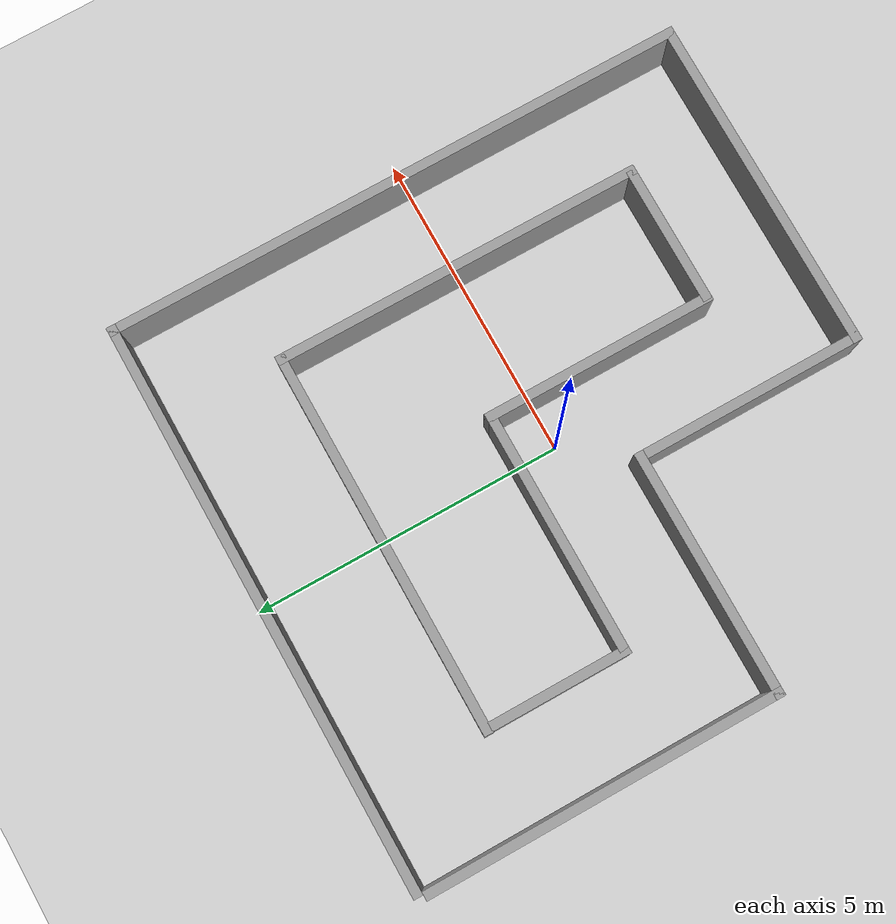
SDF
<?xml version='1.0'?>
<sdf version='1.5'>
<world name='default'>
  <light name='sun' type='directional'>
      <cast_shadows>1</cast_shadows>
      <pose>0 0 10 0 -0 0</pose>
      <diffuse>0.8 0.8 0.8 1</diffuse>
      <specular>0.2 0.2 0.2 1</specular>
      <attenuation>
        <range>1000</range>
        <constant>0.9</constant>
        <linear>0.01</linear>
        <quadratic>0.001</quadratic>
      </attenuation>
      <direction>0.5 0.1 -0.9</direction>
    </light>

  <model name='ground_plane'>
      <static>1</static>
      <link name='link'>
        <collision name='collision'>
          <geometry>
            <plane>
              <normal>0 0 1</normal>
              <size>100 100</size>
            </plane>
          </geometry>
          <surface>
            <friction>
              <ode>
                <mu>100</mu>
                <mu2>50</mu2>
              </ode>
            </friction>
            <bounce/>
            <contact>
              <ode/>
            </contact>
          </surface>
          <max_contacts>10</max_contacts>
        </collision>
        <visual name='visual'>
          <cast_shadows>0</cast_shadows>
          <geometry>
            <plane>
              <normal>0 0 1</normal>
              <size>100 100</size>
            </plane>
          </geometry>
          <material>
            <script>
              <uri>file://media/materials/scripts/gazebo.material</uri>
              <name>Gazebo/Grey</name>
            </script>
          </material>
        </visual>
        <velocity_decay>
          <linear>0</linear>
          <angular>0</angular>
        </velocity_decay>
        <self_collide>0</self_collide>
        <kinematic>0</kinematic>
        <gravity>1</gravity>
      </link>
  </model>

  <model name='Circuit_ql_2'>
    <pose frame=''>-0.076 0.178 0 0 -0 0</pose>
    <link name='Wall_0'>
      <collision name='Wall_0_Collision'>
        <geometry>
          <box>
            <size>5.75 0.15 1</size>
          </box>
        </geometry>
        <pose frame=''>0 0 0.5 0 -0 0</pose>
      </collision>
      <visual name='Wall_0_Visual'>
        <pose frame=''>0 0 0.5 0 -0 0</pose>
        <geometry>
          <box>
            <size>5.75 0.15 1</size>
          </box>
        </geometry>
        <material>
          <script>
            <uri>file://media/materials/scripts/gazebo.material</uri>
            <name>Gazebo/Grey</name>
          </script>
          <ambient>1 1 1 1</ambient>
        </material>
      </visual>
      <pose frame=''>-4.6 1.725 0 0 0 -1.5708</pose>
    </link>
    <link name='Wall_1'>
      <collision name='Wall_1_Collision'>
        <geometry>
          <box>
            <size>4 0.15 1</size>
          </box>
        </geometry>
        <pose frame=''>0 0 0.5 0 -0 0</pose>
      </collision>
      <visual name='Wall_1_Visual'>
        <pose frame=''>0 0 0.5 0 -0 0</pose>
        <geometry>
          <box>
            <size>4 0.15 1</size>
          </box>
        </geometry>
        <material>
          <script>
            <uri>file://media/materials/scripts/gazebo.material</uri>
            <name>Gazebo/Grey</name>
          </script>
          <ambient>1 1 1 1</ambient>
        </material>
      </visual>
      <pose frame=''>-2.675 -1.075 0 0 -0 0</pose>
    </link>
    <link name='Wall_11'>
      <collision name='Wall_11_Collision'>
        <geometry>
          <box>
            <size>2.25 0.15 1</size>
          </box>
        </geometry>
        <pose frame=''>0 0 0.5 0 -0 0</pose>
      </collision>
      <visual name='Wall_11_Visual'>
        <pose frame=''>0 0 0.5 0 -0 0</pose>
        <geometry>
          <box>
            <size>2.25 0.15 1</size>
          </box>
        </geometry>
        <material>
          <script>
            <uri>file://media/materials/scripts/gazebo.material</uri>
            <name>Gazebo/Grey</name>
          </script>
          <ambient>1 1 1 1</ambient>
        </material>
      </visual>
      <pose frame=''>-3.036 1.559 0 0 0 -1.5708</pose>
    </link>
    <link name='Wall_12'>
      <collision name='Wall_12_Collision'>
        <geometry>
          <box>
            <size>4 0.15 1</size>
          </box>
        </geometry>
        <pose frame=''>0 0 0.5 0 -0 0</pose>
      </collision>
      <visual name='Wall_12_Visual'>
        <pose frame=''>0 0 0.5 0 -0 0</pose>
        <geometry>
          <box>
            <size>4 0.15 1</size>
          </box>
        </geometry>
        <material>
          <script>
            <uri>file://media/materials/scripts/gazebo.material</uri>
            <name>Gazebo/Grey</name>
          </script>
          <ambient>1 1 1 1</ambient>
        </material>
      </visual>
      <pose frame=''>-1.111 0.509 0 0 -0 0</pose>
    </link>
    <link name='Wall_13'>
      <collision name='Wall_13_Collision'>
        <geometry>
          <box>
            <size>3.75 0.15 1</size>
          </box>
        </geometry>
        <pose frame=''>0 0 0.5 0 -0 0</pose>
      </collision>
      <visual name='Wall_13_Visual'>
        <pose frame=''>0 0 0.5 0 -0 0</pose>
        <geometry>
          <box>
            <size>3.75 0.15 1</size>
          </box>
        </geometry>
        <material>
          <script>
            <uri>file://media/materials/scripts/gazebo.material</uri>
            <name>Gazebo/Grey</name>
          </script>
          <ambient>1 1 1 1</ambient>
        </material>
      </visual>
      <pose frame=''>0.814 -1.291 0 0 0 -1.5708</pose>
    </link>
    <link name='Wall_14'>
      <collision name='Wall_14_Collision'>
        <geometry>
          <box>
            <size>2.25 0.15 1</size>
          </box>
        </geometry>
        <pose frame=''>0 0 0.5 0 -0 0</pose>
      </collision>
      <visual name='Wall_14_Visual'>
        <pose frame=''>0 0 0.5 0 -0 0</pose>
        <geometry>
          <box>
            <size>2.25 0.15 1</size>
          </box>
        </geometry>
        <material>
          <script>
            <uri>file://media/materials/scripts/gazebo.material</uri>
            <name>Gazebo/Grey</name>
          </script>
          <ambient>1 1 1 1</ambient>
        </material>
      </visual>
      <pose frame=''>1.9 -3.091 0 0 -0 0</pose>
    </link>
    <link name='Wall_15'>
      <collision name='Wall_15_Collision'>
        <geometry>
          <box>
            <size>5.98502 0.15 1</size>
          </box>
        </geometry>
        <pose frame=''>0 0 0.5 0 -0 0</pose>
      </collision>
      <visual name='Wall_15_Visual'>
        <pose frame=''>0 0 0.5 0 -0 0</pose>
        <geometry>
          <box>
            <size>5.98502 0.15 1</size>
          </box>
        </geometry>
        <material>
          <script>
            <uri>file://media/materials/scripts/gazebo.material</uri>
            <name>Gazebo/Grey</name>
          </script>
          <ambient>1 1 1 1</ambient>
        </material>
      </visual>
      <pose frame=''>3.0215 -0.1735 0 0 -0 1.56823</pose>
    </link>
    <link name='Wall_16'>
      <collision name='Wall_16_Collision'>
        <geometry>
          <box>
            <size>6.2 0.15 1</size>
          </box>
        </geometry>
        <pose frame=''>0 0 0.5 0 -0 0</pose>
      </collision>
      <visual name='Wall_16_Visual'>
        <pose frame=''>0 0 0.5 0 -0 0</pose>
        <geometry>
          <box>
            <size>6.2 0.15 1</size>
          </box>
        </geometry>
        <material>
          <script>
            <uri>file://media/materials/scripts/gazebo.material</uri>
            <name>Gazebo/Grey</name>
          </script>
          <ambient>1 1 1 1</ambient>
        </material>
      </visual>
      <pose frame=''>-0.02 2.744 0 0 -0 3.14159</pose>
    </link>
    <link name='Wall_2'>
      <collision name='Wall_2_Collision'>
        <geometry>
          <box>
            <size>3.7 0.15 1</size>
          </box>
        </geometry>
        <pose frame=''>0 0 0.5 0 -0 0</pose>
      </collision>
      <visual name='Wall_2_Visual'>
        <pose frame=''>0 0 0.5 0 -0 0</pose>
        <geometry>
          <box>
            <size>3.7 0.15 1</size>
          </box>
        </geometry>
        <material>
          <script>
            <uri>file://media/materials/scripts/gazebo.material</uri>
            <name>Gazebo/Grey</name>
          </script>
          <ambient>1 1 1 1</ambient>
        </material>
      </visual>
      <pose frame=''>-0.75 -2.875 0 0 0 -1.5708</pose>
    </link>
    <link name='Wall_3'>
      <collision name='Wall_3_Collision'>
        <geometry>
          <box>
            <size>5.5 0.15 1</size>
          </box>
        </geometry>
        <pose frame=''>0 0 0.5 0 -0 0</pose>
      </collision>
      <visual name='Wall_3_Visual'>
        <pose frame=''>0 0 0.5 0 -0 0</pose>
        <geometry>
          <box>
            <size>5.5 0.15 1</size>
          </box>
        </geometry>
        <material>
          <script>
            <uri>file://media/materials/scripts/gazebo.material</uri>
            <name>Gazebo/Grey</name>
          </script>
          <ambient>1 1 1 1</ambient>
        </material>
      </visual>
      <pose frame=''>1.925 -4.675 0 0 -0 0</pose>
    </link>
    <link name='Wall_7'>
      <collision name='Wall_7_Collision'>
        <geometry>
          <box>
            <size>9.5 0.15 1</size>
          </box>
        </geometry>
        <pose frame=''>0 0 0.5 0 -0 0</pose>
      </collision>
      <visual name='Wall_7_Visual'>
        <pose frame=''>0 0 0.5 0 -0 0</pose>
        <geometry>
          <box>
            <size>9.5 0.15 1</size>
          </box>
        </geometry>
        <material>
          <script>
            <uri>file://media/materials/scripts/gazebo.material</uri>
            <name>Gazebo/Grey</name>
          </script>
          <ambient>1 1 1 1</ambient>
        </material>
      </visual>
      <pose frame=''>4.6 0 0 0 -0 1.5708</pose>
    </link>
    <link name='Wall_9'>
      <collision name='Wall_9_Collision'>
        <geometry>
          <box>
            <size>9.25 0.15 1</size>
          </box>
        </geometry>
        <pose frame=''>0 0 0.5 0 -0 0</pose>
      </collision>
      <visual name='Wall_9_Visual'>
        <pose frame=''>0 0 0.5 0 -0 0</pose>
        <geometry>
          <box>
            <size>9.25 0.15 1</size>
          </box>
        </geometry>
        <material>
          <script>
            <uri>file://media/materials/scripts/gazebo.material</uri>
            <name>Gazebo/Grey</name>
          </script>
          <ambient>1 1 1 1</ambient>
        </material>
      </visual>
      <pose frame=''>0.05 4.675 0 0 -0 3.14159</pose>
    </link>
    <static>1</static>
  </model>
</world>
</sdf>
